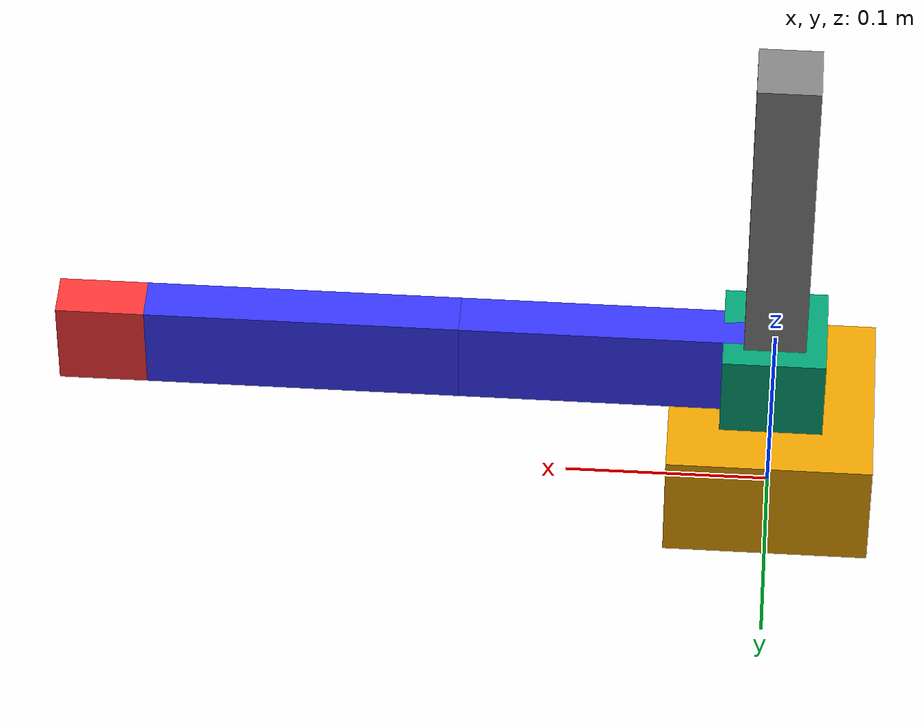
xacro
<?xml version="1.0"?>
<robot xmlns:xacro="http://www.ros.org/wiki/xacro" name="hogpie_arm">
    <xacro:arg name="initial_positions_file" default="initial_positions.yaml" />

    <!-- Import hogpie_arm urdf file -->
    <xacro:include filename="$(find hogpie_arm_description)/urdf/hogpie_arm_description.urdf" />

    <!-- Import control_xacro -->
    <xacro:include filename="hogpie_arm.ros2_control.xacro" />

    <xacro:hogpie_arm_ros2_control name="FakeSystem" initial_positions_file="$(arg initial_positions_file)"/>

</robot>

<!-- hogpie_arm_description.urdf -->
<robot name="hogpie_arm">

  <!-- BASE -->

  <link name="base_link">

    <visual>
      <geometry>
        <box size="0.10 0.10 0.06"/>
      </geometry>
      <origin xyz="0 0 0.03"/>
    </visual>

    <collision>
      <geometry>
        <box size="0.10 0.10 0.06"/>
      </geometry>
      <origin xyz="0 0 0.03"/>
    </collision>

  </link>

  <!-- FIXED COLUMN -->

  <link name="column_link">

    <visual>
      <geometry>
        <box size="0.03 0.03 0.215"/>
      </geometry>
      <origin xyz="0 0 0.1075"/>

      <material name="gray">
        <color rgba="0.5 0.5 0.5 1.0"/>
      </material>
    </visual>

    <collision>
      <geometry>
        <box size="0.03 0.03 0.215"/>
      </geometry>
      <origin xyz="0 0 0.1075"/>
    </collision>

  </link>

  <joint name="column_fixed_joint" type="fixed">

    <parent link="base_link"/>
    <child link="column_link"/>

    <!-- top of 10 mm base -->
    <origin xyz="0 0 0.06"/>

  </joint>

  <!-- MOVING CARRIAGE -->

  <link name="carriage_link">

    <visual>
      <geometry>
        <box size="0.05 0.05 0.046"/>
      </geometry>

      <origin xyz="0 0 0.023"/>
    </visual>

    <collision>
      <geometry>
        <box size="0.05 0.05 0.046"/>
      </geometry>

      <origin xyz="0 0 0.023"/>
    </collision>

  </link>

  <!-- ELEVATOR -->

  <joint name="lift_joint" type="prismatic">

    <parent link="column_link"/>
    <child link="carriage_link"/>

    <!-- start at bottom of column -->
    <origin xyz="0 0 0"/>

    <axis xyz="0 0 1"/>

    <limit
      lower="0.0"
      upper="0.176"
      effort="50.0"
      velocity="0.10"/>

  </joint>

  <!-- LINK 1 -->

  <link name="link1">

    <visual>
      <geometry>
        <box size="0.153 0.022 0.046"/>
      </geometry>

      <origin xyz="0.0765 0 0"/>

      <material name="blue">
        <color rgba="0.2 0.2 1.0 1.0"/>
      </material>
    </visual>

    <collision>
      <geometry>
        <box size="0.153 0.022 0.046"/>
      </geometry>

      <origin xyz="0.0765 0 0"/>
    </collision>

  </link>

  <!-- JOINT 1 -->

  <joint name="joint1" type="revolute">

    <parent link="carriage_link"/>
    <child link="link1"/>

    <!-- shoulder axis through center of carriage -->
    <origin xyz="0 0 0.023"/>

    <axis xyz="0 0 1"/>

    <limit
      lower="-1.93"
      upper="1.93"
      effort="5.0"
      velocity="1.0"/>

  </joint>

  <!-- LINK 2 -->

  <link name="link2">

    <visual>
      <geometry>
        <box size="0.153 0.022 0.046"/>
      </geometry>

      <origin xyz="0.0765 0 0"/>

      <material name="blue"/>
    </visual>

    <collision>
      <geometry>
        <box size="0.153 0.022 0.046"/>
      </geometry>

      <origin xyz="0.0765 0 0"/>
    </collision>

  </link>

  <!-- JOINT 2 -->

  <joint name="joint2" type="revolute">

    <parent link="link1"/>
    <child link="link2"/>

    <origin xyz="0.153 0 0"/>

    <axis xyz="0 0 1"/>

    <limit
      lower="-2.007"
      upper="2.007"
      effort="5.0"
      velocity="1.0"/>

  </joint>

  <!-- TOOL -->

  <link name="tool_link">

    <visual>
      <geometry>
        <box size="0.043 0.022 0.046"/>
      </geometry>

      <origin xyz="0.0215 0 0"/>

      <material name="red">
        <color rgba="1.0 0.2 0.2 1.0"/>
      </material>
    </visual>

    <collision>
      <geometry>
        <box size="0.043 0.022 0.046"/>
      </geometry>

      <origin xyz="0.0215 0 0"/>
    </collision>

  </link>

  <!-- JOINT 3 -->

  <joint name="joint3" type="revolute">

    <parent link="link2"/>
    <child link="tool_link"/>

    <origin xyz="0.153 0 0"/>

    <axis xyz="0 0 1"/>

    <limit
      lower="-2.007"
      upper="2.007"
      effort="5.0"
      velocity="1.0"/>

  </joint>

</robot>
